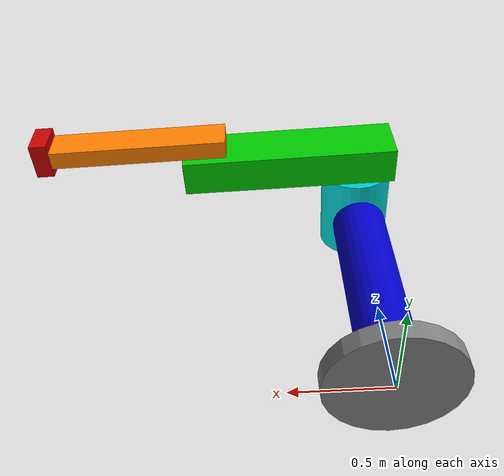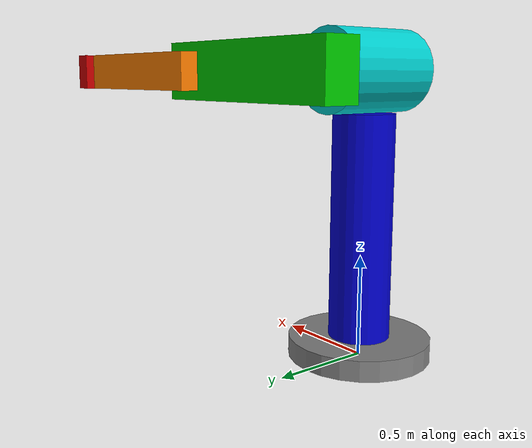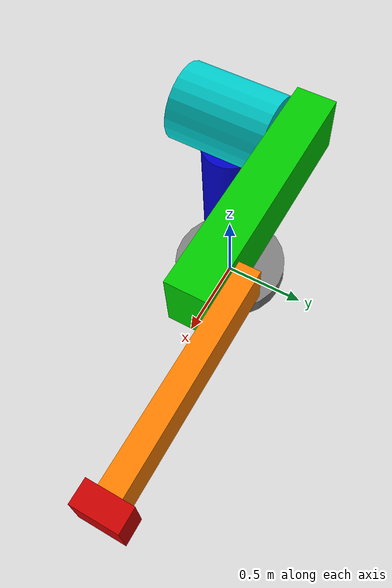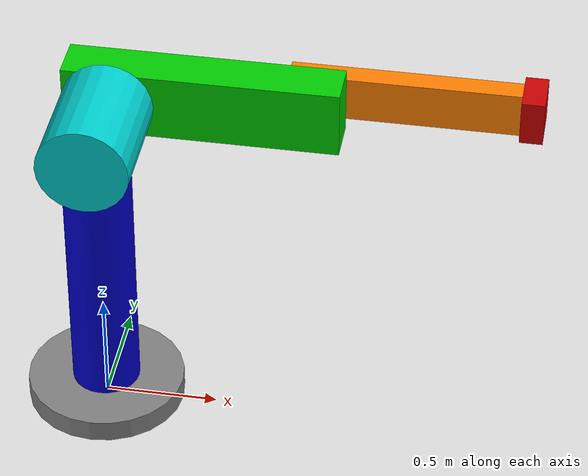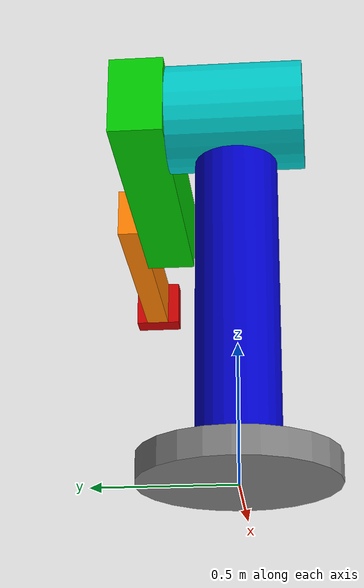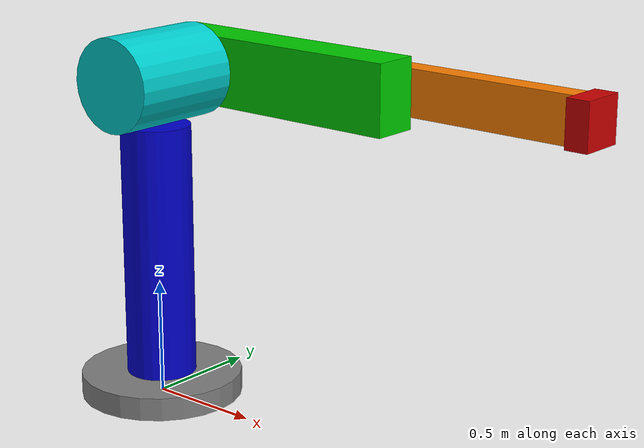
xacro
<?xml version="1.0" ?>
<robot name="puma_robot" xmlns:xacro="http://www.ros.org/wiki/xacro">

    <!-- Material Definitions                          -->
    <material name="blue">
        <color rgba="0.0 0.0 0.8 1.0"/>
    </material>
    <material name="cyan">
        <color rgba="0.0 0.8 0.8 1.0"/>
    </material>
    <material name="green">
        <color rgba="0.0 0.8 0.0 1.0"/>
    </material>
    <material name="red">
        <color rgba="0.8 0.0 0.0 1.0"/>
    </material>
    <material name="orange">
        <color rgba="1.0 0.5 0.0 1.0"/>
    </material>
    <material name="grey">
        <color rgba="0.5 0.5 0.5 1.0"/>
    </material>

    <!-- Dummy root for KDL                            -->
    <link name="dummy_root"/>

    <joint name="basejoint" type="fixed">
        <parent link="dummy_root"/>
        <child link="base_link"/>
        <origin xyz="0 0 0" rpy="0 0 0"/>
    </joint>

    <!-- Link: base_link (基座)                         -->
    <!-- Cylinder: radius=0.35, length=0.1             -->
    <!-- Origin: 0 0 0.05                              -->
    <link name="base_link">
        <visual>
            <origin xyz="0 0 0.05" rpy="0 0 0"/>
            <geometry>
                <cylinder radius="0.35" length="0.1"/>
            </geometry>
            <material name="grey"/>
        </visual>
        <collision>
            <origin xyz="0 0 0.05" rpy="0 0 0"/>
            <geometry>
                <cylinder radius="0.35" length="0.1"/>
            </geometry>
        </collision>
        <inertial>
            <mass value="10.0"/>
            <origin xyz="0 0 0.05" rpy="0 0 0"/>
            <inertia ixx="1.0" ixy="0.0" ixz="0.0" iyy="1.0" iyz="0.0" izz="1.0"/>
        </inertial>
    </link>

    <!-- Joint: J_0 (Revolute)                         -->
    <!-- Origin: xyz="0 0 0.1", Axis: Z                -->
    <joint name="J_0" type="revolute">
        <parent link="base_link"/>
        <child link="link_01"/>
        <origin xyz="0 0 0.1" rpy="0 0 0"/>
        <axis xyz="0 0 1"/>
        <limit lower="-3.14" upper="3.14" effort="100" velocity="1.0"/>
    </joint>

    <!-- Link: link_01 (立柱)                           -->
    <!-- Cylinder: radius=0.15, length=1.1             -->
    <link name="link_01">
        <visual>
            <origin xyz="0 0 0.55" rpy="0 0 0"/>
            <geometry>
                <cylinder radius="0.15" length="1.1"/>
            </geometry>
            <material name="blue"/>
        </visual>
        <collision>
            <origin xyz="0 0 0.55" rpy="0 0 0"/>
            <geometry>
                <cylinder radius="0.15" length="1.1"/>
            </geometry>
        </collision>
        <inertial>
            <mass value="5.0"/>
            <origin xyz="0 0 0.55" rpy="0 0 0"/>
            <inertia ixx="0.5" ixy="0.0" ixz="0.0" iyy="0.5" iyz="0.0" izz="0.5"/>
        </inertial>
    </link>

    <!-- Joint: J_F0 (Fixed) - 坐标系转换               -->
    <!-- Origin: xyz="0 0 1.3", rpy="-pi/2 -pi/2 0"    -->
    <joint name="J_F0" type="fixed">
        <parent link="link_01"/>
        <child link="link_02"/>
        <origin xyz="0 0 1.3" rpy="-1.5708 -1.5708 0"/>
    </joint>

    <!-- Link: link_02 (水平连接圆柱)                   -->
    <!-- Cylinder: radius=0.2, length=0.5              -->
    <link name="link_02">
        <visual>
            <origin xyz="0 0 0" rpy="0 0 0"/>
            <geometry>
                <cylinder radius="0.2" length="0.5"/>
            </geometry>
            <material name="cyan"/>
        </visual>
        <collision>
            <origin xyz="0 0 0" rpy="0 0 0"/>
            <geometry>
                <cylinder radius="0.2" length="0.5"/>
            </geometry>
        </collision>
        <inertial>
            <mass value="2.0"/>
            <origin xyz="0 0 0" rpy="0 0 0"/>
            <inertia ixx="0.2" ixy="0.0" ixz="0.0" iyy="0.2" iyz="0.0" izz="0.2"/>
        </inertial>
    </link>

    <!-- Joint: J_1 (Revolute)                         -->
    <!-- Origin: xyz="0 0 0.35", Axis: Z               -->
    <joint name="J_1" type="revolute">
        <parent link="link_02"/>
        <child link="link_03"/>
        <origin xyz="0 0 0.35" rpy="0 0 0"/>
        <axis xyz="0 0 1"/>
        <limit lower="-3.14" upper="3.14" effort="100" velocity="1.0"/>
    </joint>

    <!-- Link: link_03 (大臂)                           -->
    <!-- Box: size="0.3 1.2 0.2"                       -->
    <link name="link_03">
        <visual>
            <origin xyz="0 0.4 0" rpy="0 0 0"/>
            <geometry>
                <box size="0.3 1.2 0.2"/>
            </geometry>
            <material name="green"/>
        </visual>
        <collision>
            <origin xyz="0 0.6 0" rpy="0 0 0"/>
            <geometry>
                <box size="0.3 1.2 0.2"/>
            </geometry>
        </collision>
        <inertial>
            <mass value="3.0"/>
            <origin xyz="0 0.6 0" rpy="0 0 0"/>
            <inertia ixx="0.3" ixy="0.0" ixz="0.0" iyy="0.3" iyz="0.0" izz="0.3"/>
        </inertial>
    </link>

    <!-- Joint: J_2 (Revolute)                         -->
    <!-- Origin: xyz="0 1.0 0.2", Axis: Z              -->
    <joint name="J_2" type="revolute">
        <parent link="link_03"/>
        <child link="link_04"/>
        <origin xyz="0 0.85 0.15" rpy="0 0 0"/>
        <axis xyz="0 0 1"/>
        <limit lower="-3.14" upper="3.14" effort="100" velocity="1.0"/>
    </joint>

    <!-- Link: link_04 (小臂)                           -->
    <!-- Box: size="0.2 1.0 0.1"                       -->
    <link name="link_04">
        <visual>
            <origin xyz="0 0.4 0" rpy="0 0 0"/>
            <geometry>
                <box size="0.2 1.0 0.1"/>
            </geometry>
            <material name="orange"/>
        </visual>
        <collision>
            <origin xyz="0 0.5 -0.05" rpy="0 0 0"/>
            <geometry>
                <box size="0.2 1.0 0.1"/>
            </geometry>
        </collision>
        <inertial>
            <mass value="2.0"/>
            <origin xyz="0 0.5 -0.05" rpy="0 0 0"/>
            <inertia ixx="0.2" ixy="0.0" ixz="0.0" iyy="0.2" iyz="0.0" izz="0.2"/>
        </inertial>
    </link>

    <!-- Joint: J_3 (Revolute)                         -->
    <!-- Origin: xyz="0 0.9 -0.05", rpy="pi/2 pi/2 pi" -->
    <joint name="J_3" type="revolute">
        <parent link="link_04"/>
        <child link="effector"/>
        <origin xyz="0 1.0 0" rpy="1.5708 1.5708 3.14159"/>
        <axis xyz="0 0 1"/>
        <limit lower="-3.14" upper="3.14" effort="100" velocity="1.0"/>
    </joint>

    <!-- Link: effector (末端执行器)                    -->
    <!-- Box: size="0.2 0.2 0.1"                       -->
    <link name="effector">
        <visual>
            <origin xyz="-0.0 0 -0.05" rpy="0 0 0"/>
            <geometry>
                <box size="0.2 0.2 0.1"/>
            </geometry>
            <material name="red"/>
        </visual>
        <collision>
            <origin xyz="0 0 0" rpy="0 0 0"/>
            <geometry>
                <box size="0.2 0.2 0.1"/>
            </geometry>
        </collision>
        <inertial>
            <mass value="0.5"/>
            <origin xyz="0 0 0" rpy="0 0 0"/>
            <inertia ixx="0.01" ixy="0.0" ixz="0.0" iyy="0.01" iyz="0.0" izz="0.01"/>
        </inertial>
    </link>

</robot>
